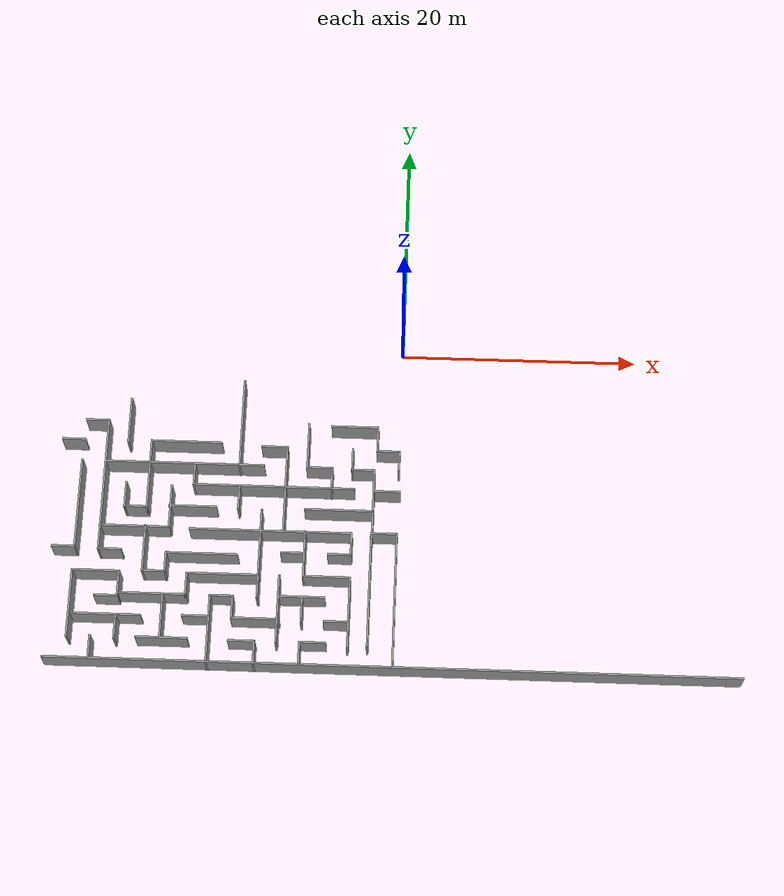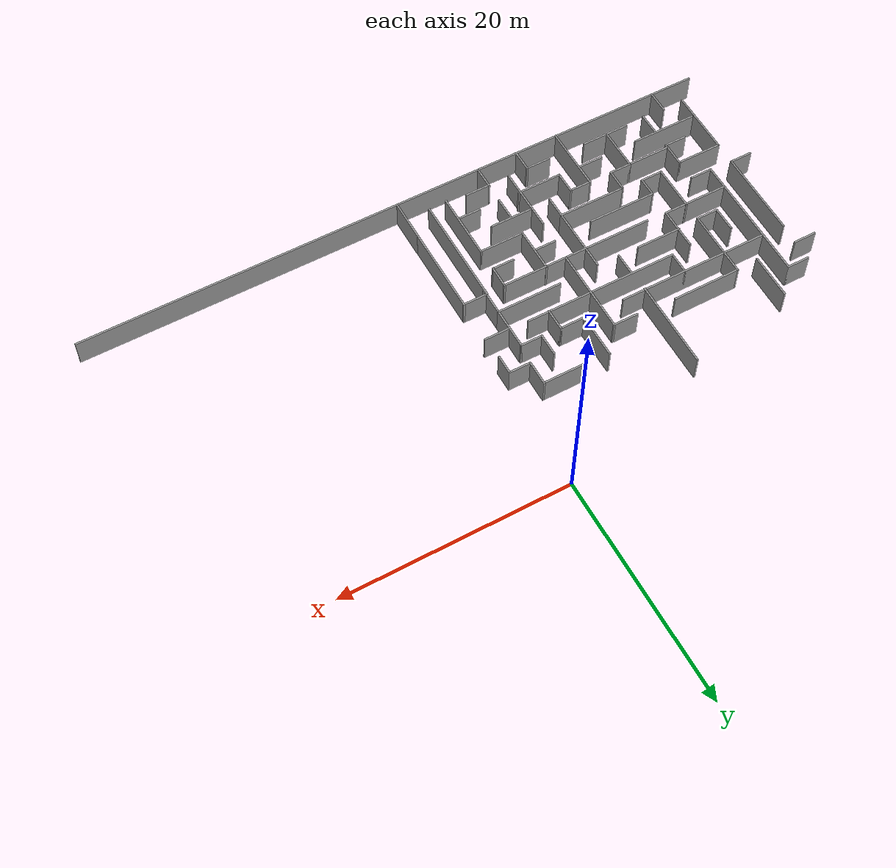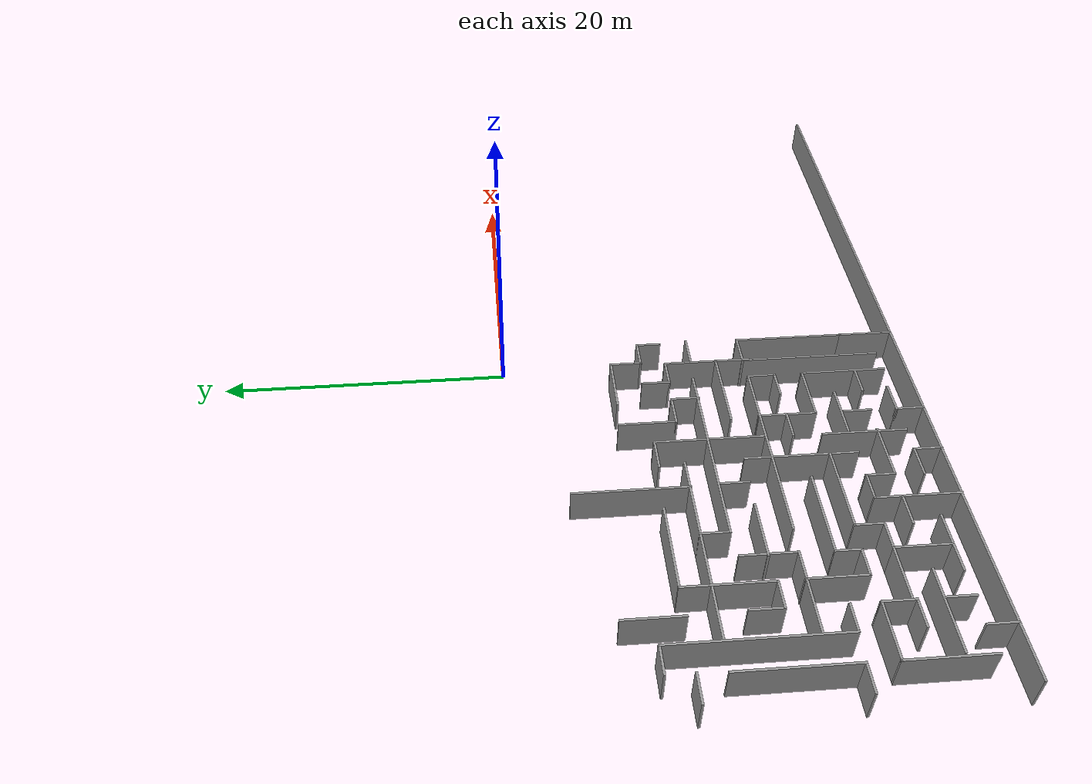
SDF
<sdf version="1.7">
 <model name="maze4">
  <pose>-0.019787 0.082438 0 0 -0 0</pose>
  <link name="Wall_109">
   <collision name="Wall_109_Collision">
    <geometry><box><size>4 0.15 2.5</size></box></geometry>
    <pose>0 0 1.25 0 -0 0</pose>
   </collision>
   <visual name="Wall_109_Visual">
    <pose>0 0 1.25 0 -0 0</pose>
    <geometry><box><size>4 0.15 2.5</size></box></geometry>
    <material>
     <script><uri>file://media/materials/scripts/gazebo.material</uri><name>Gazebo/Grey</name></script>
     <ambient>1 1 1 1</ambient>
    </material>
    <meta><layer>0</layer></meta>
   </visual>
   <pose>-22.7641 -7.60087 0 0 -0 -1.5708</pose>
  </link>
  <link name="Wall_114">
   <collision name="Wall_114_Collision">
    <geometry><box><size>2 0.15 2.5</size></box></geometry>
    <pose>0 0 1.25 0 -0 0</pose>
   </collision>
   <visual name="Wall_114_Visual">
    <pose>0 0 1.25 0 -0 0</pose>
    <geometry><box><size>2 0.15 2.5</size></box></geometry>
    <material>
     <script><uri>file://media/materials/scripts/gazebo.material</uri><name>Gazebo/Grey</name></script>
     <ambient>1 1 1 1</ambient>
    </material>
    <meta><layer>0</layer></meta>
   </visual>
   <pose>-25.457 -7.6657 0 0 -0 0</pose>
  </link>
  <link name="Wall_115">
   <collision name="Wall_115_Collision">
    <geometry><box><size>11.5 0.15 2.5</size></box></geometry>
    <pose>0 0 1.25 0 -0 0</pose>
   </collision>
   <visual name="Wall_115_Visual">
    <pose>0 0 1.25 0 -0 0</pose>
    <geometry><box><size>11.5 0.15 2.5</size></box></geometry>
    <material>
     <script><uri>file://media/materials/scripts/gazebo.material</uri><name>Gazebo/Grey</name></script>
     <ambient>1 1 1 1</ambient>
    </material>
    <meta><layer>0</layer></meta>
   </visual>
   <pose>-24.532 -13.3407 0 0 -0 -1.5708</pose>
  </link>
  <link name="Wall_116">
   <collision name="Wall_116_Collision">
    <geometry><box><size>2 0.15 2.5</size></box></geometry>
    <pose>0 0 1.25 0 -0 0</pose>
   </collision>
   <visual name="Wall_116_Visual">
    <pose>0 0 1.25 0 -0 0</pose>
    <geometry><box><size>2 0.15 2.5</size></box></geometry>
    <material>
     <script><uri>file://media/materials/scripts/gazebo.material</uri><name>Gazebo/Grey</name></script>
     <ambient>1 1 1 1</ambient>
    </material>
    <meta><layer>0</layer></meta>
   </visual>
   <pose>-23.607 -19.0157 0 0 -0 0</pose>
  </link>
  <link name="Wall_118">
   <collision name="Wall_118_Collision">
    <geometry><box><size>2 0.15 2.5</size></box></geometry>
    <pose>0 0 1.25 0 -0 0</pose>
   </collision>
   <visual name="Wall_118_Visual">
    <pose>0 0 1.25 0 -0 0</pose>
    <geometry><box><size>2 0.15 2.5</size></box></geometry>
    <material>
     <script><uri>file://media/materials/scripts/gazebo.material</uri><name>Gazebo/Grey</name></script>
     <ambient>1 1 1 1</ambient>
    </material>
    <meta><layer>0</layer></meta>
   </visual>
   <pose>-27.3386 -9.43933 0 0 -0 0</pose>
  </link>
  <link name="Wall_120">
   <collision name="Wall_120_Collision">
    <geometry><box><size>2 0.15 2.5</size></box></geometry>
    <pose>0 0 1.25 0 -0 0</pose>
   </collision>
   <visual name="Wall_120_Visual">
    <pose>0 0 1.25 0 -0 0</pose>
    <geometry><box><size>2 0.15 2.5</size></box></geometry>
    <material>
     <script><uri>file://media/materials/scripts/gazebo.material</uri><name>Gazebo/Grey</name></script>
     <ambient>1 1 1 1</ambient>
    </material>
    <meta><layer>0</layer></meta>
   </visual>
   <pose>-27.42 -18.8783 0 0 -0 0</pose>
  </link>
  <link name="Wall_121">
   <collision name="Wall_121_Collision">
    <geometry><box><size>7.75 0.15 2.5</size></box></geometry>
    <pose>0 0 1.25 0 -0 0</pose>
   </collision>
   <visual name="Wall_121_Visual">
    <pose>0 0 1.25 0 -0 0</pose>
    <geometry><box><size>7.75 0.15 2.5</size></box></geometry>
    <material>
     <script><uri>file://media/materials/scripts/gazebo.material</uri><name>Gazebo/Grey</name></script>
     <ambient>1 1 1 1</ambient>
    </material>
    <meta><layer>0</layer></meta>
   </visual>
   <pose>-26.495 -15.0783 0 0 -0 1.5708</pose>
  </link>
  <link name="Wall_123">
   <collision name="Wall_123_Collision">
    <geometry><box><size>2 0.15 2.5</size></box></geometry>
    <pose>0 0 1.25 0 -0 0</pose>
   </collision>
   <visual name="Wall_123_Visual">
    <pose>0 0 1.25 0 -0 0</pose>
    <geometry><box><size>2 0.15 2.5</size></box></geometry>
    <material>
     <script><uri>file://media/materials/scripts/gazebo.material</uri><name>Gazebo/Grey</name></script>
     <ambient>1 1 1 1</ambient>
    </material>
    <meta><layer>0</layer></meta>
   </visual>
   <pose>-24.6019 -27.3516 0 0 -0 1.5708</pose>
  </link>
  <link name="Wall_125">
   <collision name="Wall_125_Collision">
    <geometry><box><size>5.75 0.15 2.5</size></box></geometry>
    <pose>0 0 1.25 0 -0 0</pose>
   </collision>
   <visual name="Wall_125_Visual">
    <pose>0 0 1.25 0 -0 0</pose>
    <geometry><box><size>5.75 0.15 2.5</size></box></geometry>
    <material>
     <script><uri>file://media/materials/scripts/gazebo.material</uri><name>Gazebo/Grey</name></script>
     <ambient>1 1 1 1</ambient>
    </material>
    <meta><layer>0</layer></meta>
   </visual>
   <pose>-26.5141 -23.6865 0 0 -0 1.5708</pose>
  </link>
  <link name="Wall_126">
   <collision name="Wall_126_Collision">
    <geometry><box><size>4 0.15 2.5</size></box></geometry>
    <pose>0 0 1.25 0 -0 0</pose>
   </collision>
   <visual name="Wall_126_Visual">
    <pose>0 0 1.25 0 -0 0</pose>
    <geometry><box><size>4 0.15 2.5</size></box></geometry>
    <material>
     <script><uri>file://media/materials/scripts/gazebo.material</uri><name>Gazebo/Grey</name></script>
     <ambient>1 1 1 1</ambient>
    </material>
    <meta><layer>0</layer></meta>
   </visual>
   <pose>-24.5891 -20.8865 0 0 -0 0</pose>
  </link>
  <link name="Wall_127">
   <collision name="Wall_127_Collision">
    <geometry><box><size>2.25 0.15 2.5</size></box></geometry>
    <pose>0 0 1.25 0 -0 0</pose>
   </collision>
   <visual name="Wall_127_Visual">
    <pose>0 0 1.25 0 -0 0</pose>
    <geometry><box><size>2.25 0.15 2.5</size></box></geometry>
    <material>
     <script><uri>file://media/materials/scripts/gazebo.material</uri><name>Gazebo/Grey</name></script>
     <ambient>1 1 1 1</ambient>
    </material>
    <meta><layer>0</layer></meta>
   </visual>
   <pose>-22.6641 -21.9365 0 0 -0 -1.5708</pose>
  </link>
  <link name="Wall_128">
   <collision name="Wall_128_Collision">
    <geometry><box><size>2 0.15 2.5</size></box></geometry>
    <pose>0 0 1.25 0 -0 0</pose>
   </collision>
   <visual name="Wall_128_Visual">
    <pose>0 0 1.25 0 -0 0</pose>
    <geometry><box><size>2 0.15 2.5</size></box></geometry>
    <material>
     <script><uri>file://media/materials/scripts/gazebo.material</uri><name>Gazebo/Grey</name></script>
     <ambient>1 1 1 1</ambient>
    </material>
    <meta><layer>0</layer></meta>
   </visual>
   <pose>-23.5891 -22.9865 0 0 -0 3.14159</pose>
  </link>
  <link name="Wall_130">
   <collision name="Wall_130_Collision">
    <geometry><box><size>5.75 0.15 2.5</size></box></geometry>
    <pose>0 0 1.25 0 -0 0</pose>
   </collision>
   <visual name="Wall_130_Visual">
    <pose>0 0 1.25 0 -0 0</pose>
    <geometry><box><size>5.75 0.15 2.5</size></box></geometry>
    <material>
     <script><uri>file://media/materials/scripts/gazebo.material</uri><name>Gazebo/Grey</name></script>
     <ambient>1 1 1 1</ambient>
    </material>
    <meta><layer>0</layer></meta>
   </visual>
   <pose>-23.47 -24.5743 0 0 -0 0</pose>
  </link>
  <link name="Wall_132">
   <collision name="Wall_132_Collision">
    <geometry><box><size>2 0.15 2.5</size></box></geometry>
    <pose>0 0 1.25 0 -0 0</pose>
   </collision>
   <visual name="Wall_132_Visual">
    <pose>0 0 1.25 0 -0 0</pose>
    <geometry><box><size>2 0.15 2.5</size></box></geometry>
    <material>
     <script><uri>file://media/materials/scripts/gazebo.material</uri><name>Gazebo/Grey</name></script>
     <ambient>1 1 1 1</ambient>
    </material>
    <meta><layer>0</layer></meta>
   </visual>
   <pose>-22.649 -25.6022 0 0 -0 1.5708</pose>
  </link>
  <link name="Wall_134">
   <collision name="Wall_134_Collision">
    <geometry><box><size>4.25 0.15 2.5</size></box></geometry>
    <pose>0 0 1.25 0 -0 0</pose>
   </collision>
   <visual name="Wall_134_Visual">
    <pose>0 0 1.25 0 -0 0</pose>
    <geometry><box><size>4.25 0.15 2.5</size></box></geometry>
    <material>
     <script><uri>file://media/materials/scripts/gazebo.material</uri><name>Gazebo/Grey</name></script>
     <ambient>1 1 1 1</ambient>
    </material>
    <meta><layer>0</layer></meta>
   </visual>
   <pose>-18.8089 -26.4051 0 0 -0 0</pose>
  </link>
  <link name="Wall_136">
   <collision name="Wall_136_Collision">
    <geometry><box><size>3.75 0.15 2.5</size></box></geometry>
    <pose>0 0 1.25 0 -0 0</pose>
   </collision>
   <visual name="Wall_136_Visual">
    <pose>0 0 1.25 0 -0 0</pose>
    <geometry><box><size>3.75 0.15 2.5</size></box></geometry>
    <material>
     <script><uri>file://media/materials/scripts/gazebo.material</uri><name>Gazebo/Grey</name></script>
     <ambient>1 1 1 1</ambient>
    </material>
    <meta><layer>0</layer></meta>
   </visual>
   <pose>-18.9467 -24.5237 0 0 -0 1.5708</pose>
  </link>
  <link name="Wall_137">
   <collision name="Wall_137_Collision">
    <geometry><box><size>3.75 0.15 2.5</size></box></geometry>
    <pose>0 0 1.25 0 -0 0</pose>
   </collision>
   <visual name="Wall_137_Visual">
    <pose>0 0 1.25 0 -0 0</pose>
    <geometry><box><size>3.75 0.15 2.5</size></box></geometry>
    <material>
     <script><uri>file://media/materials/scripts/gazebo.material</uri><name>Gazebo/Grey</name></script>
     <ambient>1 1 1 1</ambient>
    </material>
    <meta><layer>0</layer></meta>
   </visual>
   <pose>-20.7467 -22.7237 0 0 -0 3.14159</pose>
  </link>
  <link name="Wall_139">
   <collision name="Wall_139_Collision">
    <geometry><box><size>2 0.15 2.5</size></box></geometry>
    <pose>0 0 1.25 0 -0 0</pose>
   </collision>
   <visual name="Wall_139_Visual">
    <pose>0 0 1.25 0 -0 0</pose>
    <geometry><box><size>2 0.15 2.5</size></box></geometry>
    <material>
     <script><uri>file://media/materials/scripts/gazebo.material</uri><name>Gazebo/Grey</name></script>
     <ambient>1 1 1 1</ambient>
    </material>
    <meta><layer>0</layer></meta>
   </visual>
   <pose>-18.0217 -22.7237 0 0 -0 0</pose>
  </link>
  <link name="Wall_140">
   <collision name="Wall_140_Collision">
    <geometry><box><size>2 0.15 2.5</size></box></geometry>
    <pose>0 0 1.25 0 -0 0</pose>
   </collision>
   <visual name="Wall_140_Visual">
    <pose>0 0 1.25 0 -0 0</pose>
    <geometry><box><size>2 0.15 2.5</size></box></geometry>
    <material>
     <script><uri>file://media/materials/scripts/gazebo.material</uri><name>Gazebo/Grey</name></script>
     <ambient>1 1 1 1</ambient>
    </material>
    <meta><layer>0</layer></meta>
   </visual>
   <pose>-17.0967 -21.7987 0 0 -0 1.5708</pose>
  </link>
  <link name="Wall_141">
   <collision name="Wall_141_Collision">
    <geometry><box><size>6 0.15 2.5</size></box></geometry>
    <pose>0 0 1.25 0 -0 0</pose>
   </collision>
   <visual name="Wall_141_Visual">
    <pose>0 0 1.25 0 -0 0</pose>
    <geometry><box><size>6 0.15 2.5</size></box></geometry>
    <material>
     <script><uri>file://media/materials/scripts/gazebo.material</uri><name>Gazebo/Grey</name></script>
     <ambient>1 1 1 1</ambient>
    </material>
    <meta><layer>0</layer></meta>
   </visual>
   <pose>-14.1717 -20.8737 0 0 -0 0</pose>
  </link>
  <link name="Wall_142">
   <collision name="Wall_142_Collision">
    <geometry><box><size>2 0.15 2.5</size></box></geometry>
    <pose>0 0 1.25 0 -0 0</pose>
   </collision>
   <visual name="Wall_142_Visual">
    <pose>0 0 1.25 0 -0 0</pose>
    <geometry><box><size>2 0.15 2.5</size></box></geometry>
    <material>
     <script><uri>file://media/materials/scripts/gazebo.material</uri><name>Gazebo/Grey</name></script>
     <ambient>1 1 1 1</ambient>
    </material>
    <meta><layer>0</layer></meta>
   </visual>
   <pose>-11.2467 -21.7987 0 0 -0 -1.5708</pose>
  </link>
  <link name="Wall_144">
   <collision name="Wall_144_Collision">
    <geometry><box><size>5.75 0.15 2.5</size></box></geometry>
    <pose>0 0 1.25 0 -0 0</pose>
   </collision>
   <visual name="Wall_144_Visual">
    <pose>0 0 1.25 0 -0 0</pose>
    <geometry><box><size>5.75 0.15 2.5</size></box></geometry>
    <material>
     <script><uri>file://media/materials/scripts/gazebo.material</uri><name>Gazebo/Grey</name></script>
     <ambient>1 1 1 1</ambient>
    </material>
    <meta><layer>0</layer></meta>
   </visual>
   <pose>-11.2467 -18.0737 0 0 -0 1.5708</pose>
  </link>
  <link name="Wall_146">
   <collision name="Wall_146_Collision">
    <geometry><box><size>13.5 0.15 2.5</size></box></geometry>
    <pose>0 0 1.25 0 -0 0</pose>
   </collision>
   <visual name="Wall_146_Visual">
    <pose>0 0 1.25 0 -0 0</pose>
    <geometry><box><size>13.5 0.15 2.5</size></box></geometry>
    <material>
     <script><uri>file://media/materials/scripts/gazebo.material</uri><name>Gazebo/Grey</name></script>
     <ambient>1 1 1 1</ambient>
    </material>
    <meta><layer>0</layer></meta>
   </visual>
   <pose>-10.4001 -17.0475 0 0 -0 0</pose>
  </link>
  <link name="Wall_147">
   <collision name="Wall_147_Collision">
    <geometry><box><size>2 0.15 2.5</size></box></geometry>
    <pose>0 0 1.25 0 -0 0</pose>
   </collision>
   <visual name="Wall_147_Visual">
    <pose>0 0 1.25 0 -0 0</pose>
    <geometry><box><size>2 0.15 2.5</size></box></geometry>
    <material>
     <script><uri>file://media/materials/scripts/gazebo.material</uri><name>Gazebo/Grey</name></script>
     <ambient>1 1 1 1</ambient>
    </material>
    <meta><layer>0</layer></meta>
   </visual>
   <pose>-3.72513 -17.9725 0 0 -0 -1.5708</pose>
  </link>
  <link name="Wall_148">
   <collision name="Wall_148_Collision">
    <geometry><box><size>2 0.15 2.5</size></box></geometry>
    <pose>0 0 1.25 0 -0 0</pose>
   </collision>
   <visual name="Wall_148_Visual">
    <pose>0 0 1.25 0 -0 0</pose>
    <geometry><box><size>2 0.15 2.5</size></box></geometry>
    <material>
     <script><uri>file://media/materials/scripts/gazebo.material</uri><name>Gazebo/Grey</name></script>
     <ambient>1 1 1 1</ambient>
    </material>
    <meta><layer>0</layer></meta>
   </visual>
   <pose>-4.65013 -18.8975 0 0 -0 3.14159</pose>
  </link>
  <link name="Wall_150">
   <collision name="Wall_150_Collision">
    <geometry><box><size>4 0.15 2.5</size></box></geometry>
    <pose>0 0 1.25 0 -0 0</pose>
   </collision>
   <visual name="Wall_150_Visual">
    <pose>0 0 1.25 0 -0 0</pose>
    <geometry><box><size>4 0.15 2.5</size></box></geometry>
    <material>
     <script><uri>file://media/materials/scripts/gazebo.material</uri><name>Gazebo/Grey</name></script>
     <ambient>1 1 1 1</ambient>
    </material>
    <meta><layer>0</layer></meta>
   </visual>
   <pose>-7.55477 -18.9318 0 0 -0 -1.5708</pose>
  </link>
  <link name="Wall_151">
   <collision name="Wall_151_Collision">
    <geometry><box><size>4 0.15 2.5</size></box></geometry>
    <pose>0 0 1.25 0 -0 0</pose>
   </collision>
   <visual name="Wall_151_Visual">
    <pose>0 0 1.25 0 -0 0</pose>
    <geometry><box><size>4 0.15 2.5</size></box></geometry>
    <material>
     <script><uri>file://media/materials/scripts/gazebo.material</uri><name>Gazebo/Grey</name></script>
     <ambient>1 1 1 1</ambient>
    </material>
    <meta><layer>0</layer></meta>
   </visual>
   <pose>-5.62977 -20.8568 0 0 -0 0</pose>
  </link>
  <link name="Wall_152">
   <collision name="Wall_152_Collision">
    <geometry><box><size>6 0.15 2.5</size></box></geometry>
    <pose>0 0 1.25 0 -0 0</pose>
   </collision>
   <visual name="Wall_152_Visual">
    <pose>0 0 1.25 0 -0 0</pose>
    <geometry><box><size>6 0.15 2.5</size></box></geometry>
    <material>
     <script><uri>file://media/materials/scripts/gazebo.material</uri><name>Gazebo/Grey</name></script>
     <ambient>1 1 1 1</ambient>
    </material>
    <meta><layer>0</layer></meta>
   </visual>
   <pose>-3.70477 -23.7818 0 0 -0 -1.5708</pose>
  </link>
  <link name="Wall_154">
   <collision name="Wall_154_Collision">
    <geometry><box><size>2 0.15 2.5</size></box></geometry>
    <pose>0 0 1.25 0 -0 0</pose>
   </collision>
   <visual name="Wall_154_Visual">
    <pose>0 0 1.25 0 -0 0</pose>
    <geometry><box><size>2 0.15 2.5</size></box></geometry>
    <material>
     <script><uri>file://media/materials/scripts/gazebo.material</uri><name>Gazebo/Grey</name></script>
     <ambient>1 1 1 1</ambient>
    </material>
    <meta><layer>0</layer></meta>
   </visual>
   <pose>-4.75825 -24.615 0 0 -0 0</pose>
  </link>
  <link name="Wall_156">
   <collision name="Wall_156_Collision">
    <geometry><box><size>5.75 0.15 2.5</size></box></geometry>
    <pose>0 0 1.25 0 -0 0</pose>
   </collision>
   <visual name="Wall_156_Visual">
    <pose>0 0 1.25 0 -0 0</pose>
    <geometry><box><size>5.75 0.15 2.5</size></box></geometry>
    <material>
     <script><uri>file://media/materials/scripts/gazebo.material</uri><name>Gazebo/Grey</name></script>
     <ambient>1 1 1 1</ambient>
    </material>
    <meta><layer>0</layer></meta>
   </visual>
   <pose>-9.50767 -23.6719 0 0 -0 -1.5708</pose>
  </link>
  <link name="Wall_158">
   <collision name="Wall_158_Collision">
    <geometry><box><size>3.75 0.15 2.5</size></box></geometry>
    <pose>0 0 1.25 0 -0 0</pose>
   </collision>
   <visual name="Wall_158_Visual">
    <pose>0 0 1.25 0 -0 0</pose>
    <geometry><box><size>3.75 0.15 2.5</size></box></geometry>
    <material>
     <script><uri>file://media/materials/scripts/gazebo.material</uri><name>Gazebo/Grey</name></script>
     <ambient>1 1 1 1</ambient>
    </material>
    <meta><layer>0</layer></meta>
   </visual>
   <pose>-7.54493 -22.6214 0 0 -0 0</pose>
  </link>
  <link name="Wall_160">
   <collision name="Wall_160_Collision">
    <geometry><box><size>2 0.15 2.5</size></box></geometry>
    <pose>0 0 1.25 0 -0 0</pose>
   </collision>
   <visual name="Wall_160_Visual">
    <pose>0 0 1.25 0 -0 0</pose>
    <geometry><box><size>2 0.15 2.5</size></box></geometry>
    <material>
     <script><uri>file://media/materials/scripts/gazebo.material</uri><name>Gazebo/Grey</name></script>
     <ambient>1 1 1 1</ambient>
    </material>
    <meta><layer>0</layer></meta>
   </visual>
   <pose>-7.55477 -23.7306 0 0 -0 1.5708</pose>
  </link>
  <link name="Wall_162">
   <collision name="Wall_162_Collision">
    <geometry><box><size>2 0.15 2.5</size></box></geometry>
    <pose>0 0 1.25 0 -0 0</pose>
   </collision>
   <visual name="Wall_162_Visual">
    <pose>0 0 1.25 0 -0 0</pose>
    <geometry><box><size>2 0.15 2.5</size></box></geometry>
    <material>
     <script><uri>file://media/materials/scripts/gazebo.material</uri><name>Gazebo/Grey</name></script>
     <ambient>1 1 1 1</ambient>
    </material>
    <meta><layer>0</layer></meta>
   </visual>
   <pose>-7.59546 -27.3516 0 0 -0 1.5708</pose>
  </link>
  <link name="Wall_163">
   <collision name="Wall_163_Collision">
    <geometry><box><size>2.25 0.15 2.5</size></box></geometry>
    <pose>0 0 1.25 0 -0 0</pose>
   </collision>
   <visual name="Wall_163_Visual">
    <pose>0 0 1.25 0 -0 0</pose>
    <geometry><box><size>2.25 0.15 2.5</size></box></geometry>
    <material>
     <script><uri>file://media/materials/scripts/gazebo.material</uri><name>Gazebo/Grey</name></script>
     <ambient>1 1 1 1</ambient>
    </material>
    <meta><layer>0</layer></meta>
   </visual>
   <pose>-6.54546 -26.4266 0 0 -0 0</pose>
  </link>
  <link name="Wall_165">
   <collision name="Wall_165_Collision">
    <geometry><box><size>2 0.15 2.5</size></box></geometry>
    <pose>0 0 1.25 0 -0 0</pose>
   </collision>
   <visual name="Wall_165_Visual">
    <pose>0 0 1.25 0 -0 0</pose>
    <geometry><box><size>2 0.15 2.5</size></box></geometry>
    <material>
     <script><uri>file://media/materials/scripts/gazebo.material</uri><name>Gazebo/Grey</name></script>
     <ambient>1 1 1 1</ambient>
    </material>
    <meta><layer>0</layer></meta>
   </visual>
   <pose>-11.2571 -27.3923 0 0 -0 1.5708</pose>
  </link>
  <link name="Wall_166">
   <collision name="Wall_166_Collision">
    <geometry><box><size>2.25 0.15 2.5</size></box></geometry>
    <pose>0 0 1.25 0 -0 0</pose>
   </collision>
   <visual name="Wall_166_Visual">
    <pose>0 0 1.25 0 -0 0</pose>
    <geometry><box><size>2.25 0.15 2.5</size></box></geometry>
    <material>
     <script><uri>file://media/materials/scripts/gazebo.material</uri><name>Gazebo/Grey</name></script>
     <ambient>1 1 1 1</ambient>
    </material>
    <meta><layer>0</layer></meta>
   </visual>
   <pose>-12.3071 -26.4673 0 0 -0 3.14159</pose>
  </link>
  <link name="Wall_168">
   <collision name="Wall_168_Collision">
    <geometry><box><size>5.75 0.15 2.5</size></box></geometry>
    <pose>0 0 1.25 0 -0 0</pose>
   </collision>
   <visual name="Wall_168_Visual">
    <pose>0 0 1.25 0 -0 0</pose>
    <geometry><box><size>5.75 0.15 2.5</size></box></geometry>
    <material>
     <script><uri>file://media/materials/scripts/gazebo.material</uri><name>Gazebo/Grey</name></script>
     <ambient>1 1 1 1</ambient>
    </material>
    <meta><layer>0</layer></meta>
   </visual>
   <pose>-15.0816 -25.5173 0 0 -0 1.5708</pose>
  </link>
  <link name="Wall_169">
   <collision name="Wall_169_Collision">
    <geometry><box><size>2 0.15 2.5</size></box></geometry>
    <pose>0 0 1.25 0 -0 0</pose>
   </collision>
   <visual name="Wall_169_Visual">
    <pose>0 0 1.25 0 -0 0</pose>
    <geometry><box><size>2 0.15 2.5</size></box></geometry>
    <material>
     <script><uri>file://media/materials/scripts/gazebo.material</uri><name>Gazebo/Grey</name></script>
     <ambient>1 1 1 1</ambient>
    </material>
    <meta><layer>0</layer></meta>
   </visual>
   <pose>-14.1566 -22.7173 0 0 -0 0</pose>
  </link>
  <link name="Wall_170">
   <collision name="Wall_170_Collision">
    <geometry><box><size>2 0.15 2.5</size></box></geometry>
    <pose>0 0 1.25 0 -0 0</pose>
   </collision>
   <visual name="Wall_170_Visual">
    <pose>0 0 1.25 0 -0 0</pose>
    <geometry><box><size>2 0.15 2.5</size></box></geometry>
    <material>
     <script><uri>file://media/materials/scripts/gazebo.material</uri><name>Gazebo/Grey</name></script>
     <ambient>1 1 1 1</ambient>
    </material>
    <meta><layer>0</layer></meta>
   </visual>
   <pose>-13.2316 -23.6423 0 0 -0 -1.5708</pose>
  </link>
  <link name="Wall_171">
   <collision name="Wall_171_Collision">
    <geometry><box><size>4 0.15 2.5</size></box></geometry>
    <pose>0 0 1.25 0 -0 0</pose>
   </collision>
   <visual name="Wall_171_Visual">
    <pose>0 0 1.25 0 -0 0</pose>
    <geometry><box><size>4 0.15 2.5</size></box></geometry>
    <material>
     <script><uri>file://media/materials/scripts/gazebo.material</uri><name>Gazebo/Grey</name></script>
     <ambient>1 1 1 1</ambient>
    </material>
    <meta><layer>0</layer></meta>
   </visual>
   <pose>-11.3066 -24.5673 0 0 -0 0</pose>
  </link>
  <link name="Wall_173">
   <collision name="Wall_173_Collision">
    <geometry><box><size>2.25 0.15 2.5</size></box></geometry>
    <pose>0 0 1.25 0 -0 0</pose>
   </collision>
   <visual name="Wall_173_Visual">
    <pose>0 0 1.25 0 -0 0</pose>
    <geometry><box><size>2.25 0.15 2.5</size></box></geometry>
    <material>
     <script><uri>file://media/materials/scripts/gazebo.material</uri><name>Gazebo/Grey</name></script>
     <ambient>1 1 1 1</ambient>
    </material>
    <meta><layer>0</layer></meta>
   </visual>
   <pose>-16.1722 -24.4929 0 0 -0 3.14159</pose>
  </link>
  <link name="Wall_175">
   <collision name="Wall_175_Collision">
    <geometry><box><size>2 0.15 2.5</size></box></geometry>
    <pose>0 0 1.25 0 -0 0</pose>
   </collision>
   <visual name="Wall_175_Visual">
    <pose>0 0 1.25 0 -0 0</pose>
    <geometry><box><size>2 0.15 2.5</size></box></geometry>
    <material>
     <script><uri>file://media/materials/scripts/gazebo.material</uri><name>Gazebo/Grey</name></script>
     <ambient>1 1 1 1</ambient>
    </material>
    <meta><layer>0</layer></meta>
   </visual>
   <pose>-8.52046 -18.8783 0 0 -0 3.14159</pose>
  </link>
  <link name="Wall_177">
   <collision name="Wall_177_Collision">
    <geometry><box><size>4 0.15 2.5</size></box></geometry>
    <pose>0 0 1.25 0 -0 0</pose>
   </collision>
   <visual name="Wall_177_Visual">
    <pose>0 0 1.25 0 -0 0</pose>
    <geometry><box><size>4 0.15 2.5</size></box></geometry>
    <material>
     <script><uri>file://media/materials/scripts/gazebo.material</uri><name>Gazebo/Grey</name></script>
     <ambient>1 1 1 1</ambient>
    </material>
    <meta><layer>0</layer></meta>
   </visual>
   <pose>-20.7775 -18.8504 0 0 -0 -1.5708</pose>
  </link>
  <link name="Wall_178">
   <collision name="Wall_178_Collision">
    <geometry><box><size>2 0.15 2.5</size></box></geometry>
    <pose>0 0 1.25 0 -0 0</pose>
   </collision>
   <visual name="Wall_178_Visual">
    <pose>0 0 1.25 0 -0 0</pose>
    <geometry><box><size>2 0.15 2.5</size></box></geometry>
    <material>
     <script><uri>file://media/materials/scripts/gazebo.material</uri><name>Gazebo/Grey</name></script>
     <ambient>1 1 1 1</ambient>
    </material>
    <meta><layer>0</layer></meta>
   </visual>
   <pose>-19.8525 -20.7754 0 0 -0 0</pose>
  </link>
  <link name="Wall_179">
   <collision name="Wall_179_Collision">
    <geometry><box><size>1.75 0.15 2.5</size></box></geometry>
    <pose>0 0 1.25 0 -0 0</pose>
   </collision>
   <visual name="Wall_179_Visual">
    <pose>0 0 1.25 0 -0 0</pose>
    <geometry><box><size>1.75 0.15 2.5</size></box></geometry>
    <material>
     <script><uri>file://media/materials/scripts/gazebo.material</uri><name>Gazebo/Grey</name></script>
     <ambient>1 1 1 1</ambient>
    </material>
    <meta><layer>0</layer></meta>
   </visual>
   <pose>-18.9275 -19.9754 0 0 -0 1.5708</pose>
  </link>
  <link name="Wall_180">
   <collision name="Wall_180_Collision">
    <geometry><box><size>6 0.15 2.5</size></box></geometry>
    <pose>0 0 1.25 0 -0 0</pose>
   </collision>
   <visual name="Wall_180_Visual">
    <pose>0 0 1.25 0 -0 0</pose>
    <geometry><box><size>6 0.15 2.5</size></box></geometry>
    <material>
     <script><uri>file://media/materials/scripts/gazebo.material</uri><name>Gazebo/Grey</name></script>
     <ambient>1 1 1 1</ambient>
    </material>
    <meta><layer>0</layer></meta>
   </visual>
   <pose>-16.0025 -19.1754 0 0 -0 0</pose>
  </link>
  <link name="Wall_182">
   <collision name="Wall_182_Collision">
    <geometry><box><size>5.75 0.15 2.5</size></box></geometry>
    <pose>0 0 1.25 0 -0 0</pose>
   </collision>
   <visual name="Wall_182_Visual">
    <pose>0 0 1.25 0 -0 0</pose>
    <geometry><box><size>5.75 0.15 2.5</size></box></geometry>
    <material>
     <script><uri>file://media/materials/scripts/gazebo.material</uri><name>Gazebo/Grey</name></script>
     <ambient>1 1 1 1</ambient>
    </material>
    <meta><layer>0</layer></meta>
   </visual>
   <pose>-21.6392 -16.9661 0 0 -0 0</pose>
  </link>
  <link name="Wall_183">
   <collision name="Wall_183_Collision">
    <geometry><box><size>3.75 0.15 2.5</size></box></geometry>
    <pose>0 0 1.25 0 -0 0</pose>
   </collision>
   <visual name="Wall_183_Visual">
    <pose>0 0 1.25 0 -0 0</pose>
    <geometry><box><size>3.75 0.15 2.5</size></box></geometry>
    <material>
     <script><uri>file://media/materials/scripts/gazebo.material</uri><name>Gazebo/Grey</name></script>
     <ambient>1 1 1 1</ambient>
    </material>
    <meta><layer>0</layer></meta>
   </visual>
   <pose>-18.8392 -15.1661 0 0 -0 1.5708</pose>
  </link>
  <link name="Wall_185">
   <collision name="Wall_185_Collision">
    <geometry><box><size>4 0.15 2.5</size></box></geometry>
    <pose>0 0 1.25 0 -0 0</pose>
   </collision>
   <visual name="Wall_185_Visual">
    <pose>0 0 1.25 0 -0 0</pose>
    <geometry><box><size>4 0.15 2.5</size></box></geometry>
    <material>
     <script><uri>file://media/materials/scripts/gazebo.material</uri><name>Gazebo/Grey</name></script>
     <ambient>1 1 1 1</ambient>
    </material>
    <meta><layer>0</layer></meta>
   </visual>
   <pose>-16.981 -15.0946 0 0 -0 0</pose>
  </link>
  <link name="Wall_187">
   <collision name="Wall_187_Collision">
    <geometry><box><size>2.25 0.15 2.5</size></box></geometry>
    <pose>0 0 1.25 0 -0 0</pose>
   </collision>
   <visual name="Wall_187_Visual">
    <pose>0 0 1.25 0 -0 0</pose>
    <geometry><box><size>2.25 0.15 2.5</size></box></geometry>
    <material>
     <script><uri>file://media/materials/scripts/gazebo.material</uri><name>Gazebo/Grey</name></script>
     <ambient>1 1 1 1</ambient>
    </material>
    <meta><layer>0</layer></meta>
   </visual>
   <pose>-22.649 -14.1917 0 0 -0 -1.5708</pose>
  </link>
  <link name="Wall_188">
   <collision name="Wall_188_Collision">
    <geometry><box><size>2 0.15 2.5</size></box></geometry>
    <pose>0 0 1.25 0 -0 0</pose>
   </collision>
   <visual name="Wall_188_Visual">
    <pose>0 0 1.25 0 -0 0</pose>
    <geometry><box><size>2 0.15 2.5</size></box></geometry>
    <material>
     <script><uri>file://media/materials/scripts/gazebo.material</uri><name>Gazebo/Grey</name></script>
     <ambient>1 1 1 1</ambient>
    </material>
    <meta><layer>0</layer></meta>
   </visual>
   <pose>-21.724 -15.2417 0 0 -0 0</pose>
  </link>
  <link name="Wall_189">
   <collision name="Wall_189_Collision">
    <geometry><box><size>6 0.15 2.5</size></box></geometry>
    <pose>0 0 1.25 0 -0 0</pose>
   </collision>
   <visual name="Wall_189_Visual">
    <pose>0 0 1.25 0 -0 0</pose>
    <geometry><box><size>6 0.15 2.5</size></box></geometry>
    <material>
     <script><uri>file://media/materials/scripts/gazebo.material</uri><name>Gazebo/Grey</name></script>
     <ambient>1 1 1 1</ambient>
    </material>
    <meta><layer>0</layer></meta>
   </visual>
   <pose>-20.799 -12.3167 0 0 -0 1.5708</pose>
  </link>
  <link name="Wall_190">
   <collision name="Wall_190_Collision">
    <geometry><box><size>6 0.15 2.5</size></box></geometry>
    <pose>0 0 1.25 0 -0 0</pose>
   </collision>
   <visual name="Wall_190_Visual">
    <pose>0 0 1.25 0 -0 0</pose>
    <geometry><box><size>6 0.15 2.5</size></box></geometry>
    <material>
     <script><uri>file://media/materials/scripts/gazebo.material</uri><name>Gazebo/Grey</name></script>
     <ambient>1 1 1 1</ambient>
    </material>
    <meta><layer>0</layer></meta>
   </visual>
   <pose>-17.874 -9.3917 0 0 -0 0</pose>
  </link>
  <link name="Wall_192">
   <collision name="Wall_192_Collision">
    <geometry><box><size>13.25 0.15 2.5</size></box></geometry>
    <pose>0 0 1.25 0 -0 0</pose>
   </collision>
   <visual name="Wall_192_Visual">
    <pose>0 0 1.25 0 -0 0</pose>
    <geometry><box><size>13.25 0.15 2.5</size></box></geometry>
    <material>
     <script><uri>file://media/materials/scripts/gazebo.material</uri><name>Gazebo/Grey</name></script>
     <ambient>1 1 1 1</ambient>
    </material>
    <meta><layer>0</layer></meta>
   </visual>
   <pose>-17.8485 -11.3109 0 0 -0 0</pose>
  </link>
  <link name="Wall_194">
   <collision name="Wall_194_Collision">
    <geometry><box><size>2 0.15 2.5</size></box></geometry>
    <pose>0 0 1.25 0 -0 0</pose>
   </collision>
   <visual name="Wall_194_Visual">
    <pose>0 0 1.25 0 -0 0</pose>
    <geometry><box><size>2 0.15 2.5</size></box></geometry>
    <material>
     <script><uri>file://media/materials/scripts/gazebo.material</uri><name>Gazebo/Grey</name></script>
     <ambient>1 1 1 1</ambient>
    </material>
    <meta><layer>0</layer></meta>
   </visual>
   <pose>-17.0344 -12.2359 0 0 -0 -1.5708</pose>
  </link>
  <link name="Wall_195">
   <collision name="Wall_195_Collision">
    <geometry><box><size>13.5 0.15 2.5</size></box></geometry>
    <pose>0 0 1.25 0 -0 0</pose>
   </collision>
   <visual name="Wall_195_Visual">
    <pose>0 0 1.25 0 -0 0</pose>
    <geometry><box><size>13.5 0.15 2.5</size></box></geometry>
    <material>
     <script><uri>file://media/materials/scripts/gazebo.material</uri><name>Gazebo/Grey</name></script>
     <ambient>1 1 1 1</ambient>
    </material>
    <meta><layer>0</layer></meta>
   </visual>
   <pose>-10.3594 -13.1609 0 0 -0 0</pose>
  </link>
  <link name="Wall_197">
   <collision name="Wall_197_Collision">
    <geometry><box><size>2 0.15 2.5</size></box></geometry>
    <pose>0 0 1.25 0 -0 0</pose>
   </collision>
   <visual name="Wall_197_Visual">
    <pose>0 0 1.25 0 -0 0</pose>
    <geometry><box><size>2 0.15 2.5</size></box></geometry>
    <material>
     <script><uri>file://media/materials/scripts/gazebo.material</uri><name>Gazebo/Grey</name></script>
     <ambient>1 1 1 1</ambient>
    </material>
    <meta><layer>0</layer></meta>
   </visual>
   <pose>-13.21 -14.2103 0 0 -0 1.5708</pose>
  </link>
  <link name="Wall_199">
   <collision name="Wall_199_Collision">
    <geometry><box><size>7.5 0.15 2.5</size></box></geometry>
    <pose>0 0 1.25 0 -0 0</pose>
   </collision>
   <visual name="Wall_199_Visual">
    <pose>0 0 1.25 0 -0 0</pose>
    <geometry><box><size>7.5 0.15 2.5</size></box></geometry>
    <material>
     <script><uri>file://media/materials/scripts/gazebo.material</uri><name>Gazebo/Grey</name></script>
     <ambient>1 1 1 1</ambient>
    </material>
    <meta><layer>0</layer></meta>
   </visual>
   <pose>-9.38561 -13.2911 0 0 -0 1.5708</pose>
  </link>
  <link name="Wall_2">
   <collision name="Wall_2_Collision">
    <geometry><box><size>56.75 0.15 2.5</size></box></geometry>
    <pose>0 0 1.25 0 -0 0</pose>
   </collision>
   <visual name="Wall_2_Visual">
    <pose>0 0 1.25 0 -0 0</pose>
    <geometry><box><size>56.75 0.15 2.5</size></box></geometry>
    <material>
     <script><uri>file://media/materials/scripts/gazebo.material</uri><name>Gazebo/Grey</name></script>
     <ambient>1 1 1 1</ambient>
    </material>
    <meta><layer>0</layer></meta>
   </visual>
   <pose>-0.021699 -28.2803 0 0 -0 3.14159</pose>
  </link>
  <link name="Wall_200">
   <collision name="Wall_200_Collision">
    <geometry><box><size>2.25 0.15 2.5</size></box></geometry>
    <pose>0 0 1.25 0 -0 0</pose>
   </collision>
   <visual name="Wall_200_Visual">
    <pose>0 0 1.25 0 -0 0</pose>
    <geometry><box><size>2.25 0.15 2.5</size></box></geometry>
    <material>
     <script><uri>file://media/materials/scripts/gazebo.material</uri><name>Gazebo/Grey</name></script>
     <ambient>1 1 1 1</ambient>
    </material>
    <meta><layer>0</layer></meta>
   </visual>
   <pose>-10.4356 -9.61612 0 0 -0 3.14159</pose>
  </link>
  <link name="Wall_206">
   <collision name="Wall_206_Collision">
    <geometry><box><size>7.75 0.15 2.5</size></box></geometry>
    <pose>0 0 1.25 0 -0 0</pose>
   </collision>
   <visual name="Wall_206_Visual">
    <pose>0 0 1.25 0 -0 0</pose>
    <geometry><box><size>7.75 0.15 2.5</size></box></geometry>
    <material>
     <script><uri>file://media/materials/scripts/gazebo.material</uri><name>Gazebo/Grey</name></script>
     <ambient>1 1 1 1</ambient>
    </material>
    <meta><layer>0</layer></meta>
   </visual>
   <pose>-13.3129 -7.56897 0 0 -0 -1.5708</pose>
  </link>
  <link name="Wall_255">
   <collision name="Wall_255_Collision">
    <geometry><box><size>4 0.15 2.5</size></box></geometry>
    <pose>0 0 1.25 0 -0 0</pose>
   </collision>
   <visual name="Wall_255_Visual">
    <pose>0 0 1.25 0 -0 0</pose>
    <geometry><box><size>4 0.15 2.5</size></box></geometry>
    <material>
     <script><uri>file://media/materials/scripts/gazebo.material</uri><name>Gazebo/Grey</name></script>
     <ambient>1 1 1 1</ambient>
    </material>
    <meta><layer>0</layer></meta>
   </visual>
   <pose>-7.65234 -9.43337 0 0 -0 -1.5708</pose>
  </link>
  <link name="Wall_256">
   <collision name="Wall_256_Collision">
    <geometry><box><size>2.25 0.15 2.5</size></box></geometry>
    <pose>0 0 1.25 0 -0 0</pose>
   </collision>
   <visual name="Wall_256_Visual">
    <pose>0 0 1.25 0 -0 0</pose>
    <geometry><box><size>2.25 0.15 2.5</size></box></geometry>
    <material>
     <script><uri>file://media/materials/scripts/gazebo.material</uri><name>Gazebo/Grey</name></script>
     <ambient>1 1 1 1</ambient>
    </material>
    <meta><layer>0</layer></meta>
   </visual>
   <pose>-6.60234 -11.3584 0 0 -0 0</pose>
  </link>
  <link name="Wall_257">
   <collision name="Wall_257_Collision">
    <geometry><box><size>2 0.15 2.5</size></box></geometry>
    <pose>0 0 1.25 0 -0 0</pose>
   </collision>
   <visual name="Wall_257_Visual">
    <pose>0 0 1.25 0 -0 0</pose>
    <geometry><box><size>2 0.15 2.5</size></box></geometry>
    <material>
     <script><uri>file://media/materials/scripts/gazebo.material</uri><name>Gazebo/Grey</name></script>
     <ambient>1 1 1 1</ambient>
    </material>
    <meta><layer>0</layer></meta>
   </visual>
   <pose>-5.55234 -12.2834 0 0 -0 -1.5708</pose>
  </link>
  <link name="Wall_291">
   <collision name="Wall_291_Collision">
    <geometry><box><size>4 0.15 2.5</size></box></geometry>
    <pose>0 0 1.25 0 -0 0</pose>
   </collision>
   <visual name="Wall_291_Visual">
    <pose>0 0 1.25 0 -0 0</pose>
    <geometry><box><size>4 0.15 2.5</size></box></geometry>
    <material>
     <script><uri>file://media/materials/scripts/gazebo.material</uri><name>Gazebo/Grey</name></script>
     <ambient>1 1 1 1</ambient>
    </material>
    <meta><layer>0</layer></meta>
   </visual>
   <pose>-3.77083 -7.6295 0 0 -0 0</pose>
  </link>
  <link name="Wall_294">
   <collision name="Wall_294_Collision">
    <geometry><box><size>2.25 0.15 2.5</size></box></geometry>
    <pose>0 0 1.25 0 -0 0</pose>
   </collision>
   <visual name="Wall_294_Visual">
    <pose>0 0 1.25 0 -0 0</pose>
    <geometry><box><size>2.25 0.15 2.5</size></box></geometry>
    <material>
     <script><uri>file://media/materials/scripts/gazebo.material</uri><name>Gazebo/Grey</name></script>
     <ambient>1 1 1 1</ambient>
    </material>
    <meta><layer>0</layer></meta>
   </visual>
   <pose>-1.84583 -8.67949 0 0 -0 -1.5708</pose>
  </link>
  <link name="Wall_295">
   <collision name="Wall_295_Collision">
    <geometry><box><size>2 0.15 2.5</size></box></geometry>
    <pose>0 0 1.25 0 -0 0</pose>
   </collision>
   <visual name="Wall_295_Visual">
    <pose>0 0 1.25 0 -0 0</pose>
    <geometry><box><size>2 0.15 2.5</size></box></geometry>
    <material>
     <script><uri>file://media/materials/scripts/gazebo.material</uri><name>Gazebo/Grey</name></script>
     <ambient>1 1 1 1</ambient>
    </material>
    <meta><layer>0</layer></meta>
   </visual>
   <pose>-0.920834 -9.7295 0 0 -0 0</pose>
  </link>
  <link name="Wall_296">
   <collision name="Wall_296_Collision">
    <geometry><box><size>1.75 0.15 2.5</size></box></geometry>
    <pose>0 0 1.25 0 -0 0</pose>
   </collision>
   <visual name="Wall_296_Visual">
    <pose>0 0 1.25 0 -0 0</pose>
    <geometry><box><size>1.75 0.15 2.5</size></box></geometry>
    <material>
     <script><uri>file://media/materials/scripts/gazebo.material</uri><name>Gazebo/Grey</name></script>
     <ambient>1 1 1 1</ambient>
    </material>
    <meta><layer>0</layer></meta>
   </visual>
   <pose>0.004166 -10.5295 0 0 -0 -1.5708</pose>
  </link>
  <link name="Wall_353">
   <collision name="Wall_353_Collision">
    <geometry><box><size>3.75 0.15 2.5</size></box></geometry>
    <pose>0 0 1.25 0 -0 0</pose>
   </collision>
   <visual name="Wall_353_Visual">
    <pose>0 0 1.25 0 -0 0</pose>
    <geometry><box><size>3.75 0.15 2.5</size></box></geometry>
    <material>
     <script><uri>file://media/materials/scripts/gazebo.material</uri><name>Gazebo/Grey</name></script>
     <ambient>1 1 1 1</ambient>
    </material>
    <meta><layer>0</layer></meta>
   </visual>
   <pose>0.000109 -26.3844 0 0 -0 1.5708</pose>
  </link>
  <link name="Wall_356">
   <collision name="Wall_356_Collision">
    <geometry><box><size>7.75 0.15 2.5</size></box></geometry>
    <pose>0 0 1.25 0 -0 0</pose>
   </collision>
   <visual name="Wall_356_Visual">
    <pose>0 0 1.25 0 -0 0</pose>
    <geometry><box><size>7.75 0.15 2.5</size></box></geometry>
    <material>
     <script><uri>file://media/materials/scripts/gazebo.material</uri><name>Gazebo/Grey</name></script>
     <ambient>1 1 1 1</ambient>
    </material>
    <meta><layer>0</layer></meta>
   </visual>
   <pose>0.000109 -20.7844 0 0 -0 1.5708</pose>
  </link>
  <link name="Wall_357">
   <collision name="Wall_357_Collision">
    <geometry><box><size>2.25 0.15 2.5</size></box></geometry>
    <pose>0 0 1.25 0 -0 0</pose>
   </collision>
   <visual name="Wall_357_Visual">
    <pose>0 0 1.25 0 -0 0</pose>
    <geometry><box><size>2.25 0.15 2.5</size></box></geometry>
    <material>
     <script><uri>file://media/materials/scripts/gazebo.material</uri><name>Gazebo/Grey</name></script>
     <ambient>1 1 1 1</ambient>
    </material>
    <meta><layer>0</layer></meta>
   </visual>
   <pose>-1.04989 -16.9844 0 0 -0 3.14159</pose>
  </link>
  <link name="Wall_358">
   <collision name="Wall_358_Collision">
    <geometry><box><size>9.75 0.15 2.5</size></box></geometry>
    <pose>0 0 1.25 0 -0 0</pose>
   </collision>
   <visual name="Wall_358_Visual">
    <pose>0 0 1.25 0 -0 0</pose>
    <geometry><box><size>9.75 0.15 2.5</size></box></geometry>
    <material>
     <script><uri>file://media/materials/scripts/gazebo.material</uri><name>Gazebo/Grey</name></script>
     <ambient>1 1 1 1</ambient>
    </material>
    <meta><layer>0</layer></meta>
   </visual>
   <pose>-2.09989 -21.7844 0 0 -0 -1.5708</pose>
  </link>
  <link name="Wall_361">
   <collision name="Wall_361_Collision">
    <geometry><box><size>5.75 0.15 2.5</size></box></geometry>
    <pose>0 0 1.25 0 -0 0</pose>
   </collision>
   <visual name="Wall_361_Visual">
    <pose>0 0 1.25 0 -0 0</pose>
    <geometry><box><size>5.75 0.15 2.5</size></box></geometry>
    <material>
     <script><uri>file://media/materials/scripts/gazebo.material</uri><name>Gazebo/Grey</name></script>
     <ambient>1 1 1 1</ambient>
    </material>
    <meta><layer>0</layer></meta>
   </visual>
   <pose>-4.84165 -15.059 0 0 -0 0</pose>
  </link>
  <link name="Wall_362">
   <collision name="Wall_362_Collision">
    <geometry><box><size>2.5 0.15 2.5</size></box></geometry>
    <pose>0 0 1.25 0 -0 0</pose>
   </collision>
   <visual name="Wall_362_Visual">
    <pose>0 0 1.25 0 -0 0</pose>
    <geometry><box><size>2.5 0.15 2.5</size></box></geometry>
    <material>
     <script><uri>file://media/materials/scripts/gazebo.material</uri><name>Gazebo/Grey</name></script>
     <ambient>1 1 1 1</ambient>
    </material>
    <meta><layer>0</layer></meta>
   </visual>
   <pose>-2.04165 -16.234 0 0 -0 -1.5708</pose>
  </link>
  <link name="Wall_364">
   <collision name="Wall_364_Collision">
    <geometry><box><size>3.75 0.15 2.5</size></box></geometry>
    <pose>0 0 1.25 0 -0 0</pose>
   </collision>
   <visual name="Wall_364_Visual">
    <pose>0 0 1.25 0 -0 0</pose>
    <geometry><box><size>3.75 0.15 2.5</size></box></geometry>
    <material>
     <script><uri>file://media/materials/scripts/gazebo.material</uri><name>Gazebo/Grey</name></script>
     <ambient>1 1 1 1</ambient>
    </material>
    <meta><layer>0</layer></meta>
   </visual>
   <pose>-2.04165 -13.259 0 0 -0 1.5708</pose>
  </link>
  <link name="Wall_365">
   <collision name="Wall_365_Collision">
    <geometry><box><size>2 0.15 2.5</size></box></geometry>
    <pose>0 0 1.25 0 -0 0</pose>
   </collision>
   <visual name="Wall_365_Visual">
    <pose>0 0 1.25 0 -0 0</pose>
    <geometry><box><size>2 0.15 2.5</size></box></geometry>
    <material>
     <script><uri>file://media/materials/scripts/gazebo.material</uri><name>Gazebo/Grey</name></script>
     <ambient>1 1 1 1</ambient>
    </material>
    <meta><layer>0</layer></meta>
   </visual>
   <pose>-2.96665 -11.459 0 0 -0 3.14159</pose>
  </link>
  <link name="Wall_366">
   <collision name="Wall_366_Collision">
    <geometry><box><size>2 0.15 2.5</size></box></geometry>
    <pose>0 0 1.25 0 -0 0</pose>
   </collision>
   <visual name="Wall_366_Visual">
    <pose>0 0 1.25 0 -0 0</pose>
    <geometry><box><size>2 0.15 2.5</size></box></geometry>
    <material>
     <script><uri>file://media/materials/scripts/gazebo.material</uri><name>Gazebo/Grey</name></script>
     <ambient>1 1 1 1</ambient>
    </material>
    <meta><layer>0</layer></meta>
   </visual>
   <pose>-3.89165 -10.534 0 0 -0 1.5708</pose>
  </link>
  <link name="Wall_369">
   <collision name="Wall_369_Collision">
    <geometry><box><size>2.25 0.15 2.5</size></box></geometry>
    <pose>0 0 1.25 0 -0 0</pose>
   </collision>
   <visual name="Wall_369_Visual">
    <pose>0 0 1.25 0 -0 0</pose>
    <geometry><box><size>2.25 0.15 2.5</size></box></geometry>
    <material>
     <script><uri>file://media/materials/scripts/gazebo.material</uri><name>Gazebo/Grey</name></script>
     <ambient>1 1 1 1</ambient>
    </material>
    <meta><layer>0</layer></meta>
   </visual>
   <pose>-0.89571 -13.2901 0 0 -0 0</pose>
  </link>
  <static>1</static>
 </model>
</sdf>
